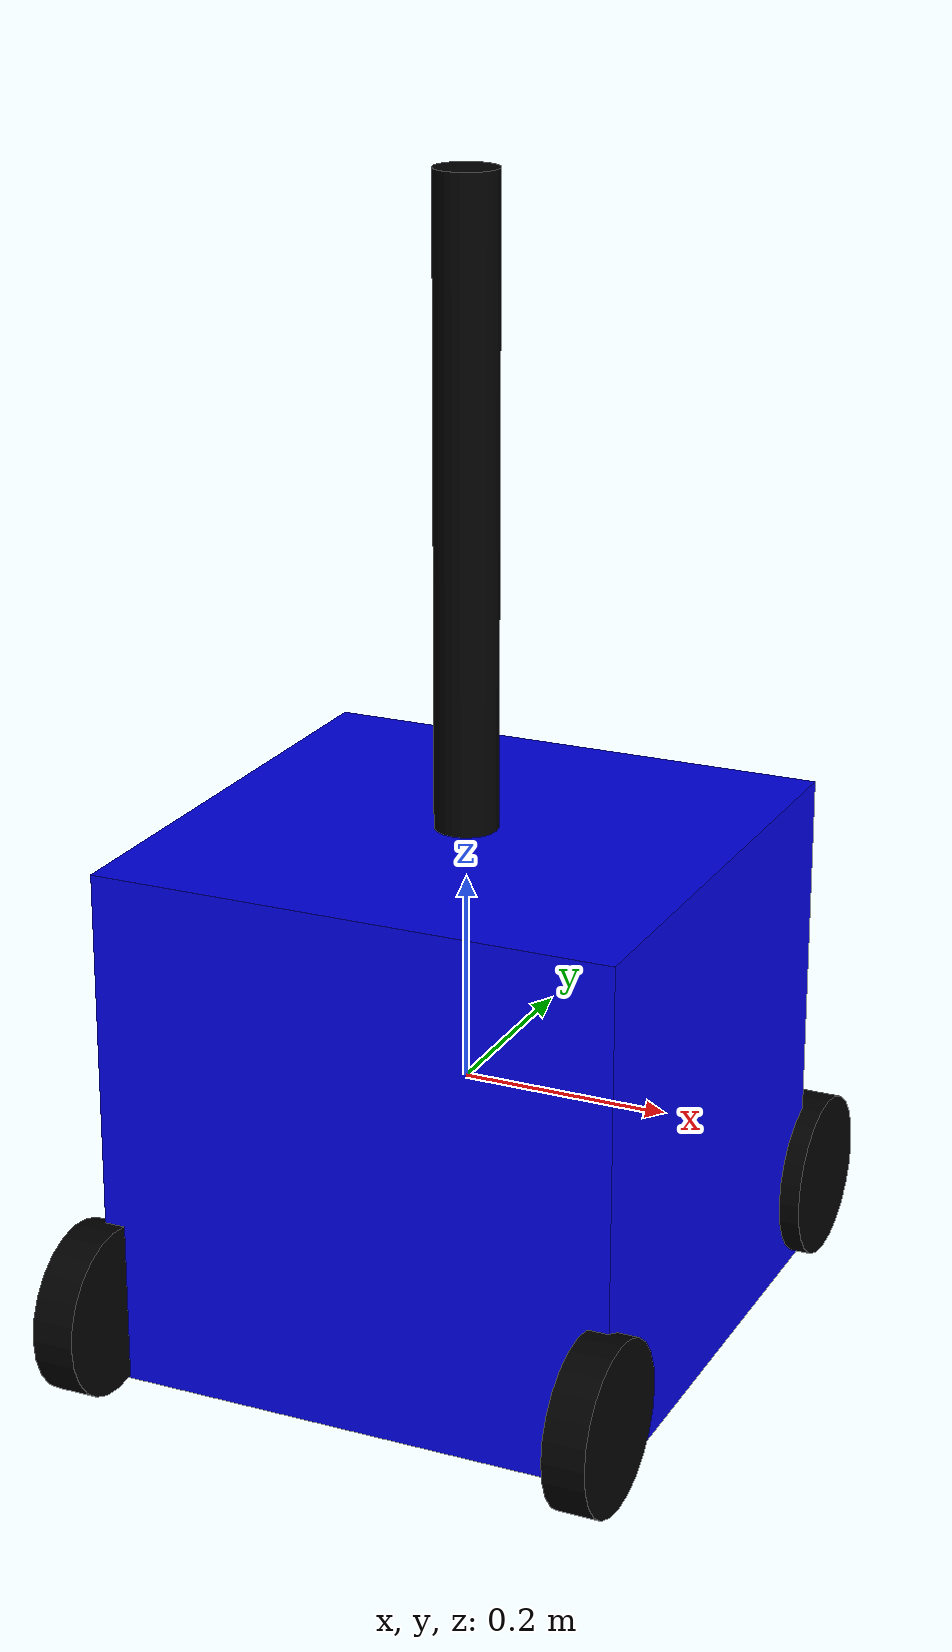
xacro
<?xml version="1.0"?>
<robot xmlns:xacro="http://www.ros.org/wiki/xacro" name="cube_bot">

  <xacro:property name="cube_size" value="0.5"/>
  <xacro:property name="wheel_radius" value="0.08"/>
  <xacro:property name="wheel_width" value="0.04"/>
  <xacro:property name="link_prefix" value="cube/"/>
  <xacro:property name="mast_height" value="0.6"/>

  <link name="${link_prefix}base_link">
    <visual>
      <geometry>
        <box size="${cube_size} ${cube_size} ${cube_size}"/>
      </geometry>
      <material name="cube_color">
        <color rgba="0.0 0.0 0.9 1.0"/>
      </material>
    </visual>
    <collision>
      <geometry>
        <box size="${cube_size} ${cube_size} ${cube_size}"/>
      </geometry>
    </collision>
    <inertial>
      <mass value="10.0"/>
      <inertia ixx="0.2" ixy="0.0" ixz="0.0" iyy="0.2" iyz="0.0" izz="0.2"/>
    </inertial>
  </link>

  <xacro:macro name="wheel" params="name x y side">
    <link name="${name}_link">
      <visual>
        <origin rpy="0 1.5708 0"/>
        <geometry>
          <cylinder radius="${wheel_radius}" length="${wheel_width}"/>
        </geometry>
        <material name="black">
          <color rgba="0 0 0 1"/>
        </material>
      </visual>
      <collision>
        <origin rpy="0 1.5708 0"/>
        <geometry>
          <cylinder radius="${wheel_radius}" length="${wheel_width}"/>
        </geometry>
      </collision>
      <inertial>
        <mass value="1.0"/>
        <inertia ixx="0.01" ixy="0.0" ixz="0.0" iyy="0.01" iyz="0.0" izz="0.01"/>
      </inertial>
    </link>

    <joint name="${name}_joint" type="fixed">
      <parent link="${link_prefix}base_link"/>
      <child link="${name}_link"/>
      <origin
        xyz="${x} ${y + side * (cube_size/2 + wheel_width/2)} ${-cube_size/2 + wheel_radius}"/>
      <axis xyz="1 0 0"/>
    </joint>
  </xacro:macro>

  <xacro:wheel name="${link_prefix}front_left_wheel"
               x="${ cube_size/2}"
               y="${ 0}"
               side="1"/>

  <xacro:wheel name="${link_prefix}rear_left_wheel"
               x="${-cube_size/2}"
               y="${ 0}"
               side="1"/>

  <xacro:wheel name="${link_prefix}front_right_wheel"
               x="${ cube_size/2}"
               y="${ 0}"
               side="-1"/>

  <xacro:wheel name="${link_prefix}rear_right_wheel"
               x="${-cube_size/2}"
               y="${ 0}"
               side="-1"/>

  <link name="${link_prefix}mast_link">
    <visual>
      <origin xyz="0 0 ${mast_height/2}"/>
      <geometry>
        <cylinder radius="0.03" length="${mast_height}"/>
      </geometry>
      <material name="black">
        <color rgba="0 0 0 1"/>
      </material>
    </visual>
    <collision>
      <origin xyz="0 0 ${mast_height/2}"/>
      <geometry>
        <cylinder radius="0.03" length="${mast_height}"/>
      </geometry>
    </collision>
    <inertial>
      <mass value="1.0"/>
      <inertia ixx="0.01" ixy="0.0" ixz="0.0" iyy="0.01" iyz="0.0" izz="0.01"/>
    </inertial>
  </link>

  <joint name="mast_joint" type="fixed">
    <parent link="${link_prefix}base_link"/>
    <child link="${link_prefix}mast_link"/>
    <origin xyz="0 0 ${cube_size/2}"/>
  </joint>

  <link name="${link_prefix}camera_link"/>
  <link name="${link_prefix}lidar_link"/>

<joint name="camera_joint" type="fixed">
  <parent link="${link_prefix}mast_link"/>
  <child link="${link_prefix}camera_link"/>
  <origin xyz="0.02 0 ${mast_height}" rpy="0 0 1.5708"/>
</joint>

<joint name="lidar_joint" type="fixed">
  <parent link="${link_prefix}mast_link"/>
  <child link="${link_prefix}lidar_link"/>
  <origin xyz="0.02 0 ${mast_height}" rpy="0 0 1.5708"/>
</joint>

  <gazebo reference="${link_prefix}camera_link">
    <sensor name="camera" type="camera">
      <camera name="cube_camera">
        <horizontal_fov>1.9</horizontal_fov>
        <image>
          <width>640</width>
          <height>480</height>
          <format>R8G8B8</format>
        </image>
        <clip>
          <near>0.2</near>
          <far>300</far>
        </clip>
      </camera>
      <always_on>1</always_on>
      <update_rate>30</update_rate>
      <visualize>true</visualize>
      <topic>${link_prefix}camera/image_raw</topic>
      <gz_frame_id>${link_prefix}camera_link</gz_frame_id>
    </sensor>
  </gazebo>

  <gazebo reference="${link_prefix}lidar_link">
    <sensor name="lidar_link" type="gpu_lidar">
    <pose>0 0 0 0 0 0</pose>
      <topic>${link_prefix}pointcloud</topic>
      <update_rate>10</update_rate>
      <ray>
        <scan>
          <horizontal>
            <samples>640</samples>
            <min_angle>-1.396263</min_angle>
            <max_angle>1.396263</max_angle>
          </horizontal>
          <vertical>
            <samples>32</samples>
            <min_angle>-1.39</min_angle>
            <max_angle>1.39</max_angle>
          </vertical>
        </scan>
        <range>
          <min>1.0</min>
          <max>10.0</max>
        </range>
      </ray>
      <always_on>true</always_on>
      <visualize>true</visualize>
      <gz_frame_id>${link_prefix}lidar_link</gz_frame_id>
    </sensor>
  </gazebo>

</robot>
